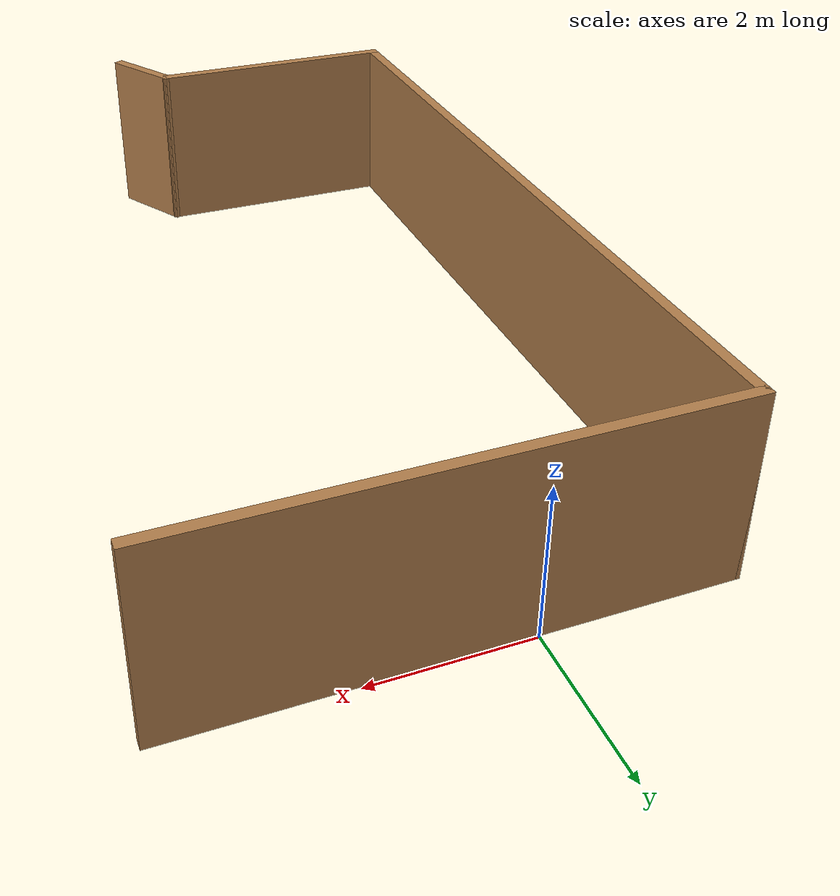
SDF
<?xml version='1.0'?>
<sdf version='1.7'>
  <model name='wall_of_room_with_objects_on_ground'>
    <pose>0.87 -6.12754 0 0 -0 0</pose>
    <link name='Wall_2'>
      <collision name='Wall_2_Collision'>
        <geometry>
          <box>
            <size>11.25 0.15 2.5</size>
          </box>
        </geometry>
        <pose>0 0 1.25 0 -0 0</pose>
      </collision>
      <visual name='Wall_2_Visual'>
        <pose>0 0 1.25 0 -0 0</pose>
        <geometry>
          <box>
            <size>11.25 0.15 2.5</size>
          </box>
        </geometry>
        <material>
          <script>
            <uri>file://media/materials/scripts/gazebo.material</uri>
            <name>Gazebo/Wood</name>
          </script>
          <ambient>1 1 1 1</ambient>
        </material>
        <meta>
          <layer>0</layer>
        </meta>
      </visual>
      <pose>-3.3 0.47754 0 0 -0 -1.5708</pose>
    </link>
    <link name='Wall_4'>
      <collision name='Wall_4_Collision'>
        <geometry>
          <box>
            <size>3.75 0.15 2.5</size>
          </box>
        </geometry>
        <pose>0 0 1.25 0 -0 0</pose>
      </collision>
      <visual name='Wall_4_Visual'>
        <pose>0 0 1.25 0 -0 0</pose>
        <geometry>
          <box>
            <size>3.75 0.15 2.5</size>
          </box>
        </geometry>
        <material>
          <script>
            <uri>file://media/materials/scripts/gazebo.material</uri>
            <name>Gazebo/Wood</name>
          </script>
          <ambient>1 1 1 1</ambient>
        </material>
        <meta>
          <layer>0</layer>
        </meta>
      </visual>
      <pose>-1.5 -5.07246 0 0 -0 0</pose>
    </link>
    <link name='Wall_5'>
      <collision name='Wall_5_Collision'>
        <geometry>
          <box>
            <size>1.25 0.15 2.5</size>
          </box>
        </geometry>
        <pose>0 0 1.25 0 -0 0</pose>
      </collision>
      <visual name='Wall_5_Visual'>
        <pose>0 0 1.25 0 -0 0</pose>
        <geometry>
          <box>
            <size>1.25 0.15 2.5</size>
          </box>
        </geometry>
        <material>
          <script>
            <uri>file://media/materials/scripts/gazebo.material</uri>
            <name>Gazebo/Wood</name>
          </script>
          <ambient>1 1 1 1</ambient>
        </material>
        <meta>
          <layer>0</layer>
        </meta>
      </visual>
      <pose>0.575001 -5.54877 0 0 -0 -1.0472</pose>
    </link>
    <link name='Wall_7'>
      <collision name='Wall_7_Collision'>
        <geometry>
          <box>
            <size>6.75 0.15 2.5</size>
          </box>
        </geometry>
        <pose>0 0 1.25 0 -0 0</pose>
      </collision>
      <visual name='Wall_7_Visual'>
        <pose>0 0 1.25 0 -0 0</pose>
        <geometry>
          <box>
            <size>6.75 0.15 2.5</size>
          </box>
        </geometry>
        <material>
          <script>
            <uri>file://media/materials/scripts/gazebo.material</uri>
            <name>Gazebo/Wood</name>
          </script>
          <ambient>1 1 1 1</ambient>
        </material>
        <meta>
          <layer>0</layer>
        </meta>
      </visual>
      <pose>0 6.02754 0 0 -0 0</pose>
    </link>
    <static>1</static>
  </model>
</sdf>
